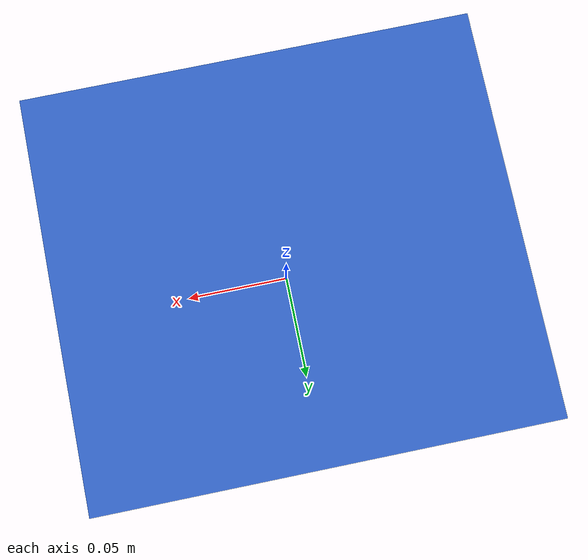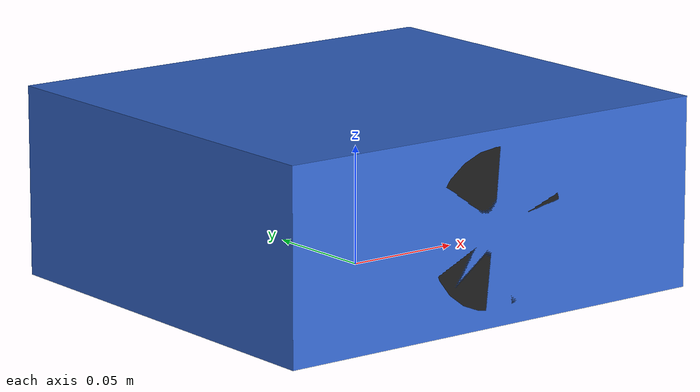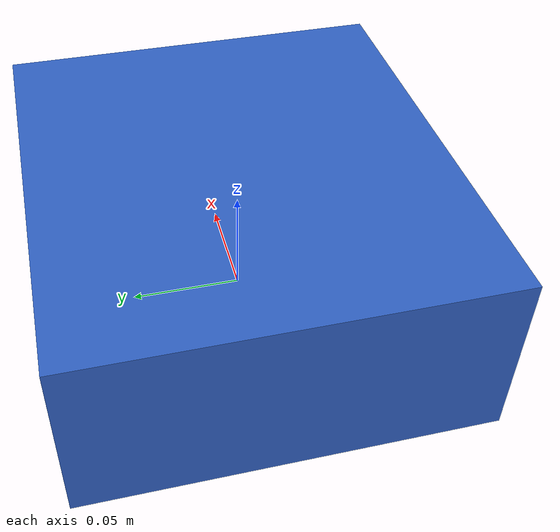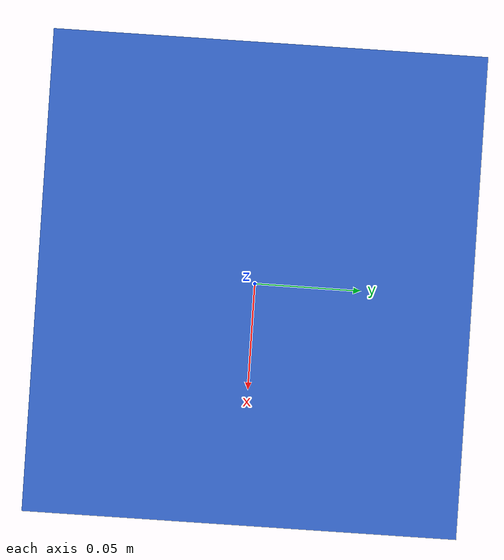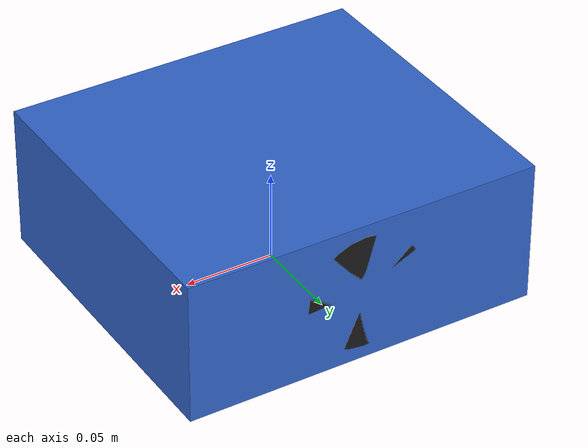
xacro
<?xml version="1.0"?>
<robot name="diff_bot" xmlns:xacro="http://www.ros.org/wiki/xacro">

  <!--  Parameters  — edit to match your robot                           -->
  <xacro:property name="base_length"      value="0.200"/>
  <xacro:property name="base_width"       value="0.180"/>
  <xacro:property name="base_height"      value="0.080"/>
  <xacro:property name="wheel_radius"     value="0.033"/>
  <xacro:property name="wheel_thickness"  value="0.020"/>
  <xacro:property name="wheel_separation" value="0.160"/>

  <!--  Links & Joints                                                    -->
  <link name="base_footprint"/>

  <joint name="base_joint" type="fixed">
    <parent link="base_footprint"/>
    <child  link="base_link"/>
    <origin xyz="0 0 ${wheel_radius}" rpy="0 0 0"/>
  </joint>

  <link name="base_link">
    <visual>
      <geometry><box size="${base_length} ${base_width} ${base_height}"/></geometry>
      <material name="blue"><color rgba="0.2 0.4 0.8 1.0"/></material>
    </visual>
    <collision>
      <geometry><box size="${base_length} ${base_width} ${base_height}"/></geometry>
    </collision>
    <inertial>
      <mass value="1.0"/>
      <inertia ixx="0.005" ixy="0" ixz="0" iyy="0.005" iyz="0" izz="0.005"/>
    </inertial>
  </link>

  <xacro:macro name="wheel" params="name y_reflect">
    <link name="${name}">
      <visual>
        <geometry><cylinder radius="${wheel_radius}" length="${wheel_thickness}"/></geometry>
        <origin xyz="0 0 0" rpy="${pi/2} 0 0"/>
        <material name="black"><color rgba="0.1 0.1 0.1 1.0"/></material>
      </visual>
      <collision>
        <geometry><cylinder radius="${wheel_radius}" length="${wheel_thickness}"/></geometry>
        <origin xyz="0 0 0" rpy="${pi/2} 0 0"/>
      </collision>
      <inertial>
        <mass value="0.2"/>
        <inertia ixx="0.0001" ixy="0" ixz="0" iyy="0.0001" iyz="0" izz="0.0002"/>
      </inertial>
    </link>
    <joint name="${name}_joint" type="continuous">
      <parent link="base_link"/>
      <child  link="${name}"/>
      <origin xyz="0 ${y_reflect * wheel_separation / 2} 0" rpy="0 0 0"/>
      <axis xyz="0 1 0"/>
    </joint>
  </xacro:macro>

  <xacro:wheel name="left_wheel"  y_reflect=" 1"/>
  <xacro:wheel name="right_wheel" y_reflect="-1"/>

  <!-- Caster -->
  <link name="caster_link">
    <visual>
      <geometry><sphere radius="${wheel_radius / 2}"/></geometry>
      <material name="grey"><color rgba="0.5 0.5 0.5 1.0"/></material>
    </visual>
    <collision><geometry><sphere radius="${wheel_radius / 2}"/></geometry></collision>
    <inertial>
      <mass value="0.05"/>
      <inertia ixx="0.00001" ixy="0" ixz="0" iyy="0.00001" iyz="0" izz="0.00001"/>
    </inertial>
  </link>
  <joint name="caster_joint" type="fixed">
    <parent link="base_link"/>
    <child  link="caster_link"/>
    <origin xyz="${base_length/2 - 0.02} 0 ${-wheel_radius/2}" rpy="0 0 0"/>
  </joint>

  <!--  ros2_control hardware interface block                             -->
  <!--  Plugin: esp32_hardware/Esp32HardwareInterface                    -->
  <!--  Parameters are read by on_init() in the C++ plugin.              -->
  <!--  serial_port: your ESP32's USB serial device                      -->
  <!--  baud_rate:   must match Serial.begin() in firmware               -->
  <ros2_control name="esp32_hardware" type="system">
    <hardware>
      <plugin>esp32_hardware/Esp32HardwareInterface</plugin>
      <param name="serial_port">/dev/serial/by-id/usb-1a86_USB_Serial-if00-port0</param>   <!-- ← edit this -->
      <param name="baud_rate">921600</param>
    </hardware>

    <!-- Joint order: index 0 = left, 1 = right (matches ESP32 firmware) -->
    <joint name="left_wheel_joint">
      <command_interface name="velocity">
        <param name="min">-9.0</param>   <!-- rad/s, matches MAX_VEL in firmware -->
        <param name="max"> 9.0</param>
      </command_interface>
      <state_interface name="position"/>
      <state_interface name="velocity"/>
    </joint>

    <joint name="right_wheel_joint">
      <command_interface name="velocity">
        <param name="min">-9.0</param>
        <param name="max"> 9.0</param>
      </command_interface>
      <state_interface name="position"/>
      <state_interface name="velocity"/>
    </joint>
  </ros2_control>

</robot>
